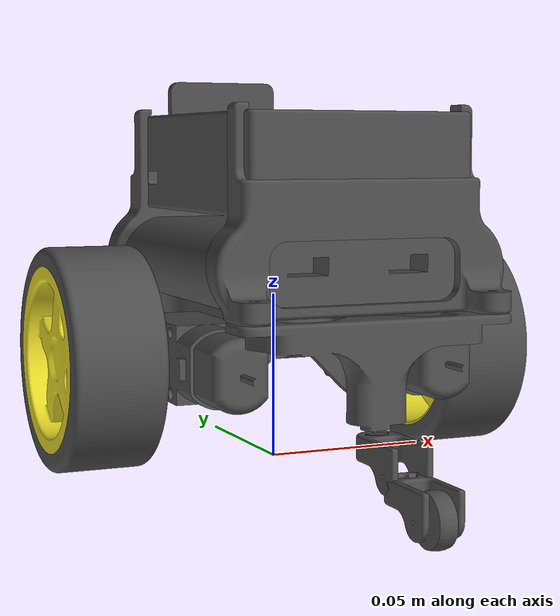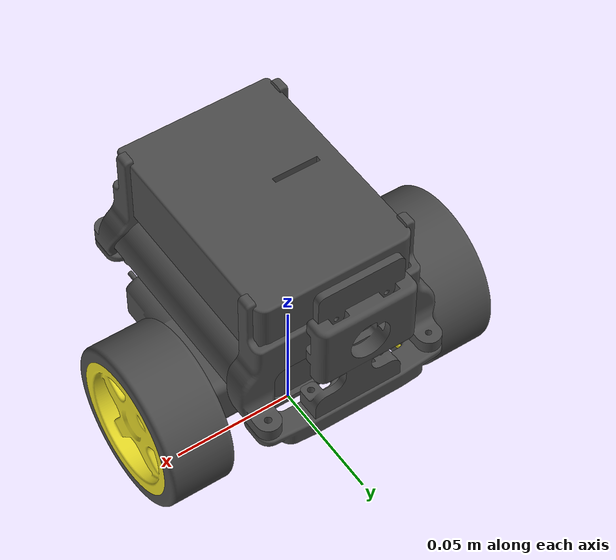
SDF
<?xml version='1.0'?>
<sdf version='1.4'>
  <model name="twister">
    <static>false</static>
    <pose>0 0 0.001 0 0 0</pose>

    <link name='chassis'>

      <inertial>
        <pose>0 -0.014693 0.06776 0 0 0</pose>
        <mass>0.626</mass>
        <inertia>
          <ixx>6.154e-4</ixx>
          <ixy>-2.583e-7</ixy>
          <ixz>-8.965e-7</ixz>
          <iyy>4.298e-4</iyy>
          <izx>-8.965e-7</izx>
          <izz>7.278e-4</izz>
        </inertia>
      </inertial>

      <visual name="twister_base">
        <geometry>
          <mesh><uri>file:///home/jst/development/puffin-pilot/twister/gazebo/twister_base.dae</uri></mesh>
        </geometry>
        <material>
          <script>
            <uri>file://media/materials/scripts/gazebo.material</uri>
            <name>Gazebo/DarkGrey</name>
          </script>
        </material>
      </visual>

      <visual name="twister_camera_holder">
        <pose>0 0.0448 0.0488 0 0 0</pose>
        <geometry>
          <mesh><uri>file:///home/jst/development/puffin-pilot/twister/gazebo/twister_camera_holder.dae</uri></mesh>
        </geometry>
        <material>
          <script>
            <uri>file://media/materials/scripts/gazebo.material</uri>
            <name>Gazebo/DarkGrey</name>
          </script>
        </material>
      </visual>

      <visual name="twister_battery_holder_front">
        <pose>0 0.0213 0.0488 0 0 3.14159</pose>
        <geometry>
          <mesh><uri>file:///home/jst/development/puffin-pilot/twister/gazebo/twister_battery_holder.dae</uri></mesh>
        </geometry>
        <material>
          <script>
            <uri>file://media/materials/scripts/gazebo.material</uri>
            <name>Gazebo/DarkGrey</name>
          </script>
        </material>
      </visual>

      <visual name="twister_battery_holder_back">
        <pose>0 -0.0517 0.0488 0 0 0</pose>
        <geometry>
          <mesh><uri>file:///home/jst/development/puffin-pilot/twister/gazebo/twister_battery_holder.dae</uri></mesh>
        </geometry>
        <material>
          <script>
            <uri>file://media/materials/scripts/gazebo.material</uri>
            <name>Gazebo/DarkGrey</name>
          </script>
        </material>
      </visual>

      <visual name="twister_motor_right">
        <pose>0.0497 0 0.03255 0 0 0</pose>
        <geometry>
          <mesh><uri>file:///home/jst/development/puffin-pilot/twister/gazebo/twister_motor.dae</uri></mesh>
        </geometry>
        <material>
          <script>
            <uri>file://media/materials/scripts/gazebo.material</uri>
            <name>Gazebo/DarkGrey</name>
          </script>
        </material>
      </visual>

      <visual name="twister_motor_left">
        <pose>-0.0497 0 0.03255 0 3.14159 0</pose>
        <geometry>
          <mesh><uri>file:///home/jst/development/puffin-pilot/twister/gazebo/twister_motor.dae</uri></mesh>
        </geometry>
        <material>
          <script>
            <uri>file://media/materials/scripts/gazebo.material</uri>
            <name>Gazebo/DarkGrey</name>
          </script>
        </material>
      </visual>
    </link>

    <gazebo reference="chassis">
      <material>Gazebo/Orange</material>
    </gazebo>

    <link name='wheel_right'>
      <pose>0.0414 0 0.03255 0 0 0</pose>

      <inertial>
        <pose>0.017868 0 0 0 0 0</pose>
        <mass>0.057</mass>
        <inertia>
          <ixx>4.210e-5</ixx>
          <ixy>2.013e-12</ixy>
          <ixz>-4.599e-13</ixz>
          <iyy>2.434e-5</iyy>
          <iyz>6.608e-12</iyz>
          <izz>2.434e-5</izz>
        </inertia>
      </inertial>

      <collision name="collision">
        <pose>0.017 0 0 0 1.5707 0</pose>
        <geometry>
          <cylinder>
            <radius>.032255</radius>
            <length>.026</length>
          </cylinder>
        </geometry>

      </collision>

      <visual name="twister_rim_right">
        <geometry>
          <mesh><uri>file:///home/jst/development/puffin-pilot/twister/gazebo/twister_rim.dae</uri></mesh>
        </geometry>
        <material>
          <script>
            <uri>file://media/materials/scripts/gazebo.material</uri>
            <name>Gazebo/DarkYellow</name>
          </script>
        </material>
      </visual>

      <visual name="twister_tire_right">
        <geometry>
          <mesh><uri>file:///home/jst/development/puffin-pilot/twister/gazebo/twister_tire.dae</uri></mesh>
        </geometry>
        <material>
          <script>
            <uri>file://media/materials/scripts/gazebo.material</uri>
            <name>Gazebo/DarkGrey</name>
          </script>
        </material>
      </visual>
    </link>

    <link name='wheel_left'>
      <pose>-0.0414 0 0.03255 0 0 3.14159</pose>

      <inertial>
        <pose>0.017868 0 0 0 0 0</pose>
        <mass>0.057</mass>
        <inertia>
          <ixx>4.210e-5</ixx>
          <ixy>2.013e-12</ixy>
          <ixz>-4.599e-13</ixz>
          <iyy>2.434e-5</iyy>
          <iyz>6.608e-12</iyz>
          <izz>2.434e-5</izz>
        </inertia>
      </inertial>

      <collision name="collision">
        <pose>0.017 0 0 0 1.5707 0</pose>
        <geometry>
          <cylinder>
            <radius>.032255</radius>
            <length>.026</length>
          </cylinder>
        </geometry>

      </collision>

      <visual name="twister_rim_left">
        <geometry>
          <mesh><uri>file:///home/jst/development/puffin-pilot/twister/gazebo/twister_rim.dae</uri></mesh>
        </geometry>
        <material>
          <script>
            <uri>file://media/materials/scripts/gazebo.material</uri>
            <name>Gazebo/DarkYellow</name>
          </script>
        </material>
      </visual>

      <visual name="twister_tire_left">
        <geometry>
          <mesh><uri>file:///home/jst/development/puffin-pilot/twister/gazebo/twister_tire.dae</uri></mesh>
        </geometry>
        <material>
          <script>
            <uri>file://media/materials/scripts/gazebo.material</uri>
            <name>Gazebo/DarkGrey</name>
          </script>
        </material>
      </visual>
    </link>

    <link name='back_wheel_holder'>
      <pose>0.0 -0.0687 0.0183 0 0 0</pose>

      <inertial>
        <pose>0 -0.008 -0.0046 0 0 0</pose>
        <mass>0.001</mass>
        <inertia>
          <ixx>4.210e-5</ixx>
          <ixy>2.013e-12</ixy>
          <ixz>-4.599e-13</ixz>
          <iyy>2.434e-5</iyy>
          <iyz>6.608e-12</iyz>
          <izz>2.434e-5</izz>
        </inertia>
      </inertial>

      <visual name="back_wheel_holder_visual">
        <geometry>
          <mesh><uri>file:///home/jst/development/puffin-pilot/twister/gazebo/twister_back_wheel_holder.dae</uri></mesh>
        </geometry>
        <material>
          <script>
            <uri>file://media/materials/scripts/gazebo.material</uri>
            <name>Gazebo/DarkGrey</name>
          </script>
        </material>
      </visual>

    </link>

    <link name='back_wheel'>
      <pose>0.0 -0.0847 0.0103 0 0 0</pose>

      <inertial>
        <pose>0 0 0 0 0 0</pose>
        <mass>0.001</mass>
        <inertia>
          <ixx>4.210e-5</ixx>
          <ixy>2.013e-12</ixy>
          <ixz>-4.599e-13</ixz>
          <iyy>2.434e-5</iyy>
          <iyz>6.608e-12</iyz>
          <izz>2.434e-5</izz>
        </inertia>
      </inertial>

      <visual name="twister_back_wheel">
        <geometry>
          <mesh><uri>file:///home/jst/development/puffin-pilot/twister/gazebo/twister_back_wheel.dae</uri></mesh>
        </geometry>
        <material>
          <script>
            <uri>file://media/materials/scripts/gazebo.material</uri>
            <name>Gazebo/DarkGrey</name>
          </script>
        </material>
      </visual>

      <collision name="back_wheel_collision">
        <pose>0 0 0 0 1.5707 0</pose>
        <geometry>
          <cylinder>
            <radius>.0075</radius>
            <length>.007</length>
          </cylinder>
        </geometry>

        <surface>
          <contact>
            <ode>
              <kp>1000000.0</kp>
              <kd>0.8</kd>
              <max_vel>0.1</max_vel>
              <min_depth>0.002</min_depth>
            </ode>
          </contact>
          <friction>
            <ode>
              <mu>0.4</mu>
              <mu2>0.4</mu2>
            </ode>
          </friction>
        </surface>
      </collision>

    </link>

    <joint type="revolute" name="right_wheel_hinge">
      <pose>0 0 0 0 0 0</pose>
      <child>wheel_right</child>
      <parent>chassis</parent>
      <axis>
        <xyz>-1 0 0</xyz>
        <dynamics>
          <friction>0.0005</friction>
        </dynamics>
      </axis>
    </joint>

    <joint type="revolute" name="left_wheel_hinge">
      <pose>0 0 0 0 0 0</pose>
      <child>wheel_left</child>
      <parent>chassis</parent>
      <axis>
        <xyz>-1 0 0</xyz>
        <dynamics>
          <friction>0.0005</friction>
        </dynamics>
      </axis>
    </joint>

    <joint type="revolute" name="back_wheel_holder_hinge">
      <pose>0 0 0 0 0 0</pose>
      <child>back_wheel_holder</child>
      <parent>chassis</parent>
      <axis>
        <xyz>0 0 1</xyz>
        <dynamics>
          <friction>0.001</friction>
        </dynamics>
      </axis>
    </joint>

    <joint type="revolute" name="back_wheel_hinge">
      <pose>0 0 0 0 0 0</pose>
      <child>back_wheel</child>
      <parent>back_wheel_holder</parent>
      <axis>
        <xyz>1 0 0</xyz>
        <dynamics>
          <friction>0.001</friction>
        </dynamics>
      </axis>
    </joint>

  </model>
</sdf>
